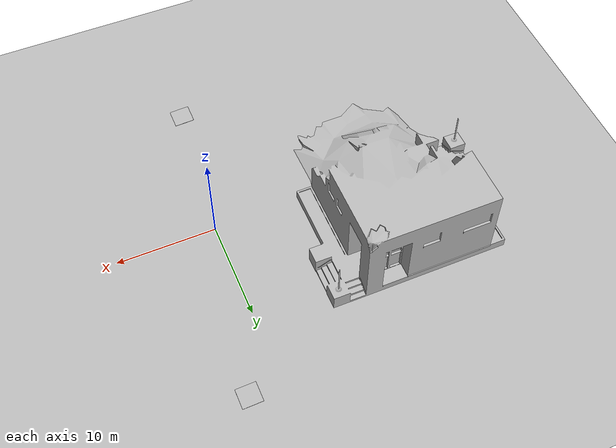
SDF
<sdf version="1.6">
 <world name="default">
  <light name="sun" type="directional">
   <pose>0 0 10 0 -0 0</pose>
   <diffuse>0.8 0.8 0.8 1</diffuse>
   <specular>0.2 0.2 0.2 1</specular>
   <attenuation>
    <range>1000</range>
    <constant>0.9</constant>
    <linear>0.01</linear>
    <quadratic>0.001</quadratic>
   </attenuation>
   <direction>-0.5 0.1 -0.9</direction>
  </light>
  <model name="ground_plane">
   <static>1</static>
   <link name="link">
    <collision name="collision">
     <geometry><plane><normal>0 0 1</normal><size>100 100</size></plane></geometry>
     <surface><friction><ode><mu>100</mu><mu2>50</mu2></ode></friction></surface>
    </collision>
    <visual name="visual">
     <cast_shadows>0</cast_shadows>
     <geometry><plane><normal>0 0 1</normal><size>100 100</size></plane></geometry>
     <material>
      <script><uri>file://media/materials/scripts/gazebo.material</uri><name>Gazebo/Grey</name></script>
     </material>
    </visual>
   </link>
  </model>
  <gravity>0 0 -9.8</gravity>
  <magnetic_field>6e-06 2.3e-05 -4.2e-05</magnetic_field>
  <atmosphere type="adiabatic"/>
  <physics name="default_physics" default="0" type="ode">
   <max_step_size>0.001</max_step_size>
   <real_time_factor>1</real_time_factor>
   <real_time_update_rate>1000</real_time_update_rate>
  </physics>
  <scene><ambient>0.4 0.4 0.4 1</ambient><background>0.7 0.7 0.7 1</background><shadows>1</shadows></scene>
  <spherical_coordinates>
   <surface_model>EARTH_WGS84</surface_model>
   <latitude_deg>0</latitude_deg>
   <longitude_deg>0</longitude_deg>
   <elevation>0</elevation>
   <heading_deg>0</heading_deg>
  </spherical_coordinates>
  <model name="Marker0">
   <static>1</static>
   <link name="Marker0::link">
    <visual name="visual">
     <geometry><mesh><uri>model://marker0/meshes/Marker0.dae</uri><scale>4 4 4</scale></mesh></geometry>
    </visual>
   </link>
   <pose>-0.551367 -14.9475 0 0 -1.52341 0</pose>
  </model>
  <model name="carpet">
   <link name="link">
    <visual name="visual">
     <geometry><box><size>5280 3956 0.005</size></box></geometry>
     <material><script><uri>file://materials.material</uri><name>Materials/Carpet</name></script></material>
    </visual>
   </link>
   <static>1</static>
  </model>
  <model name="Marker1">
   <static>1</static>
   <link name="Marker1::link">
    <visual name="visual">
     <geometry><mesh><uri>model://marker1/meshes/Marker1.dae</uri><scale>4 4 4</scale></mesh></geometry>
    </visual>
   </link>
   <pose>4.17776 17.5713 0 0 -1.52905 0</pose>
  </model>
  <model name="collapsed_police_station">
   <static>1</static>
   <link name="link">
    <collision name="collision">
     <geometry>
      <mesh><uri>model://collapsed_police_station/meshes/collapsed_police_station.dae</uri></mesh>
     </geometry>
    </collision>
    <visual name="visual">
     <geometry>
      <mesh><uri>model://collapsed_police_station/meshes/collapsed_police_station.dae</uri></mesh>
     </geometry>
    </visual>
   </link>
   <pose>-16.9247 1.50229 0 0 -0 0</pose>
  </model>
 </world>
</sdf>
